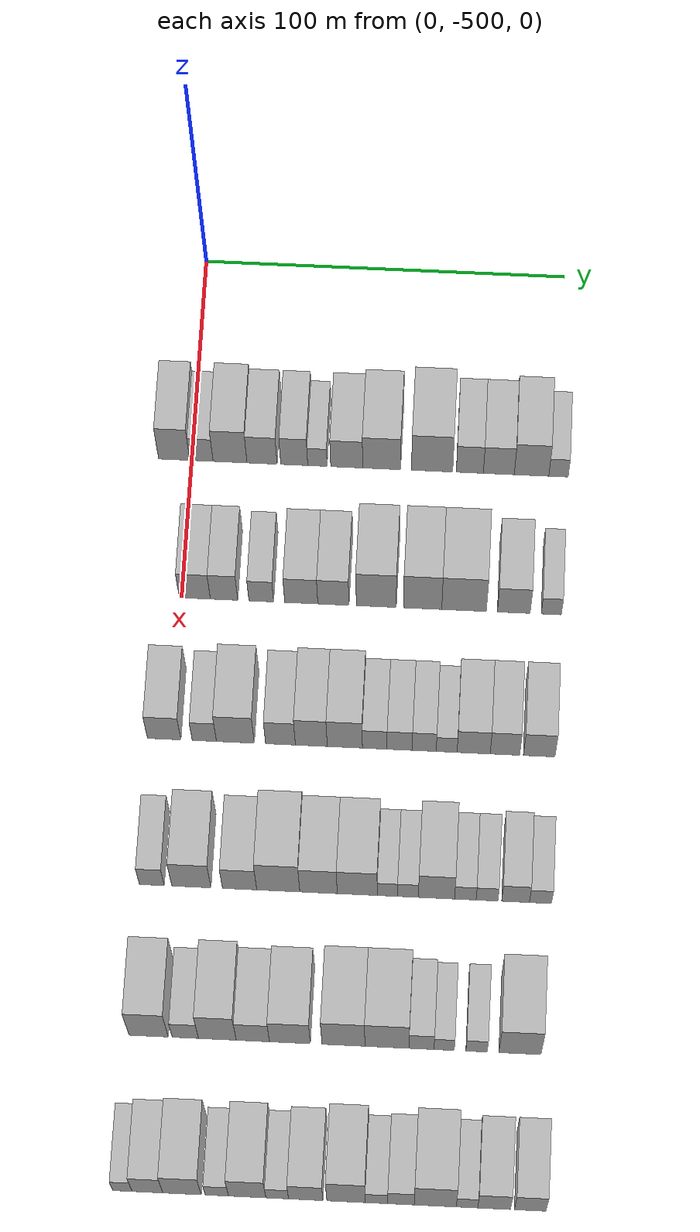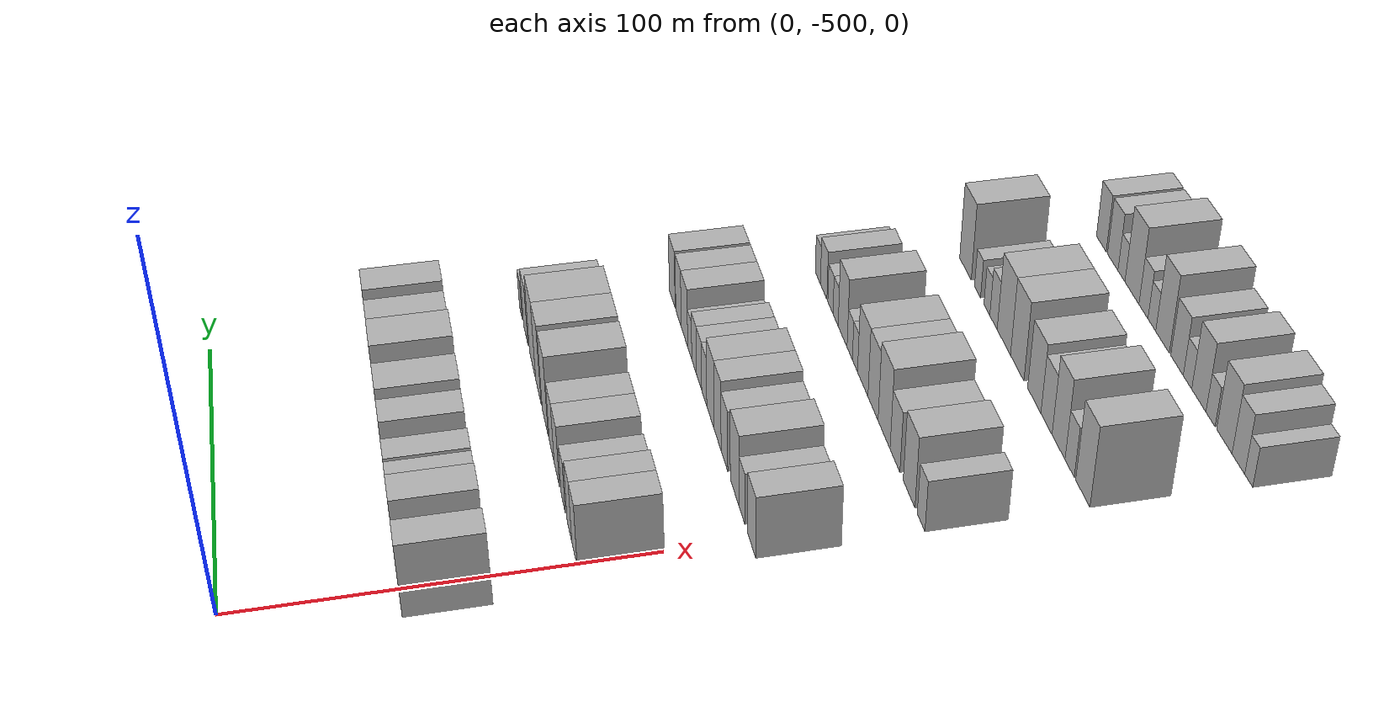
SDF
<sdf version="1.6">
 <world name="default">
  <model name="building_13">
   <static>1</static>
   <pose>50.0000 -504.8235 0 0.000000 0.000000 0.000000</pose>
   <link name="link">
    <pose>0 0 10.50 0 0 0</pose>
    <collision name="collision"><geometry><box><size>20.0000 8.5176 21.0000</size></box></geometry></collision>
    <visual name="visual">
     <cast_shadows>0</cast_shadows>
     <geometry><box><size>20.0000 8.5176 21.0000</size></box></geometry>
     <material>
      <script>
       <uri>model://HANNAS_wall/materials/scripts</uri>
       <uri>model://HANNAS_wall/materials/textures</uri>
       <name>vrc/HANNAS_wall</name>
      </script>
     </material>
    </visual>
   </link>
  </model>
  <model name="building_14">
   <static>1</static>
   <pose>50.0000 -497.3733 0 0.000000 0.000000 0.000000</pose>
   <link name="link">
    <pose>0 0 7.50 0 0 0</pose>
    <collision name="collision"><geometry><box><size>20.0000 6.3828 15.0000</size></box></geometry></collision>
    <visual name="visual">
     <cast_shadows>0</cast_shadows>
     <geometry><box><size>20.0000 6.3828 15.0000</size></box></geometry>
     <material>
      <script>
       <uri>model://HANNAS_wall/materials/scripts</uri>
       <uri>model://HANNAS_wall/materials/textures</uri>
       <name>vrc/HANNAS_wall</name>
      </script>
     </material>
    </visual>
   </link>
  </model>
  <model name="building_15">
   <static>1</static>
   <pose>50.0000 -489.5475 0 0.000000 0.000000 0.000000</pose>
   <link name="link">
    <pose>0 0 10.50 0 0 0</pose>
    <collision name="collision"><geometry><box><size>20.0000 9.2689 21.0000</size></box></geometry></collision>
    <visual name="visual">
     <cast_shadows>0</cast_shadows>
     <geometry><box><size>20.0000 9.2689 21.0000</size></box></geometry>
     <material>
      <script>
       <uri>model://HANNAS_wall/materials/scripts</uri>
       <uri>model://HANNAS_wall/materials/textures</uri>
       <name>vrc/HANNAS_wall</name>
      </script>
     </material>
    </visual>
   </link>
  </model>
  <model name="building_16">
   <static>1</static>
   <pose>50.0000 -480.7981 0 0.000000 0.000000 0.000000</pose>
   <link name="link">
    <pose>0 0 9.00 0 0 0</pose>
    <collision name="collision"><geometry><box><size>20.0000 8.2298 18.0000</size></box></geometry></collision>
    <visual name="visual">
     <cast_shadows>0</cast_shadows>
     <geometry><box><size>20.0000 8.2298 18.0000</size></box></geometry>
     <material>
      <script>
       <uri>model://HANNAS_wall/materials/scripts</uri>
       <uri>model://HANNAS_wall/materials/textures</uri>
       <name>vrc/HANNAS_wall</name>
      </script>
     </material>
    </visual>
   </link>
  </model>
  <model name="building_17">
   <static>1</static>
   <pose>50.0000 -471.9992 0 0.000000 0.000000 0.000000</pose>
   <link name="link">
    <pose>0 0 9.00 0 0 0</pose>
    <collision name="collision"><geometry><box><size>20.0000 7.3680 18.0000</size></box></geometry></collision>
    <visual name="visual">
     <cast_shadows>0</cast_shadows>
     <geometry><box><size>20.0000 7.3680 18.0000</size></box></geometry>
     <material>
      <script>
       <uri>model://HANNAS_wall/materials/scripts</uri>
       <uri>model://HANNAS_wall/materials/textures</uri>
       <name>vrc/HANNAS_wall</name>
      </script>
     </material>
    </visual>
   </link>
  </model>
  <model name="building_18">
   <static>1</static>
   <pose>50.0000 -465.6649 0 0.000000 0.000000 0.000000</pose>
   <link name="link">
    <pose>0 0 6.00 0 0 0</pose>
    <collision name="collision"><geometry><box><size>20.0000 5.3005 12.0000</size></box></geometry></collision>
    <visual name="visual">
     <cast_shadows>0</cast_shadows>
     <geometry><box><size>20.0000 5.3005 12.0000</size></box></geometry>
     <material>
      <script>
       <uri>model://HANNAS_wall/materials/scripts</uri>
       <uri>model://HANNAS_wall/materials/textures</uri>
       <name>vrc/HANNAS_wall</name>
      </script>
     </material>
    </visual>
   </link>
  </model>
  <model name="building_19">
   <static>1</static>
   <pose>50.0000 -457.6492 0 0.000000 0.000000 0.000000</pose>
   <link name="link">
    <pose>0 0 9.00 0 0 0</pose>
    <collision name="collision"><geometry><box><size>20.0000 8.7309 18.0000</size></box></geometry></collision>
    <visual name="visual">
     <cast_shadows>0</cast_shadows>
     <geometry><box><size>20.0000 8.7309 18.0000</size></box></geometry>
     <material>
      <script>
       <uri>model://HANNAS_wall/materials/scripts</uri>
       <uri>model://HANNAS_wall/materials/textures</uri>
       <name>vrc/HANNAS_wall</name>
      </script>
     </material>
    </visual>
   </link>
  </model>
  <model name="building_20">
   <static>1</static>
   <pose>50.0000 -448.1120 0 0.000000 0.000000 0.000000</pose>
   <link name="link">
    <pose>0 0 10.50 0 0 0</pose>
    <collision name="collision"><geometry><box><size>20.0000 10.3435 21.0000</size></box></geometry></collision>
    <visual name="visual">
     <cast_shadows>0</cast_shadows>
     <geometry><box><size>20.0000 10.3435 21.0000</size></box></geometry>
     <material>
      <script>
       <uri>model://HANNAS_wall/materials/scripts</uri>
       <uri>model://HANNAS_wall/materials/textures</uri>
       <name>vrc/HANNAS_wall</name>
      </script>
     </material>
    </visual>
   </link>
  </model>
  <model name="building_21">
   <static>1</static>
   <pose>50.0000 -434.3321 0 0.000000 0.000000 0.000000</pose>
   <link name="link">
    <pose>0 0 12.00 0 0 0</pose>
    <collision name="collision"><geometry><box><size>20.0000 11.2164 24.0000</size></box></geometry></collision>
    <visual name="visual">
     <cast_shadows>0</cast_shadows>
     <geometry><box><size>20.0000 11.2164 24.0000</size></box></geometry>
     <material>
      <script>
       <uri>model://HANNAS_wall/materials/scripts</uri>
       <uri>model://HANNAS_wall/materials/textures</uri>
       <name>vrc/HANNAS_wall</name>
      </script>
     </material>
    </visual>
   </link>
  </model>
  <model name="building_22">
   <static>1</static>
   <pose>50.0000 -424.0451 0 0.000000 0.000000 0.000000</pose>
   <link name="link">
    <pose>0 0 9.00 0 0 0</pose>
    <collision name="collision"><geometry><box><size>20.0000 7.3576 18.0000</size></box></geometry></collision>
    <visual name="visual">
     <cast_shadows>0</cast_shadows>
     <geometry><box><size>20.0000 7.3576 18.0000</size></box></geometry>
     <material>
      <script>
       <uri>model://HANNAS_wall/materials/scripts</uri>
       <uri>model://HANNAS_wall/materials/textures</uri>
       <name>vrc/HANNAS_wall</name>
      </script>
     </material>
    </visual>
   </link>
  </model>
  <model name="building_23">
   <static>1</static>
   <pose>50.0000 -416.1406 0 0.000000 0.000000 0.000000</pose>
   <link name="link">
    <pose>0 0 9.00 0 0 0</pose>
    <collision name="collision"><geometry><box><size>20.0000 8.4513 18.0000</size></box></geometry></collision>
    <visual name="visual">
     <cast_shadows>0</cast_shadows>
     <geometry><box><size>20.0000 8.4513 18.0000</size></box></geometry>
     <material>
      <script>
       <uri>model://HANNAS_wall/materials/scripts</uri>
       <uri>model://HANNAS_wall/materials/textures</uri>
       <name>vrc/HANNAS_wall</name>
      </script>
     </material>
    </visual>
   </link>
  </model>
  <model name="building_24">
   <static>1</static>
   <pose>50.0000 -407.2090 0 0.000000 0.000000 0.000000</pose>
   <link name="link">
    <pose>0 0 10.50 0 0 0</pose>
    <collision name="collision"><geometry><box><size>20.0000 9.4120 21.0000</size></box></geometry></collision>
    <visual name="visual">
     <cast_shadows>0</cast_shadows>
     <geometry><box><size>20.0000 9.4120 21.0000</size></box></geometry>
     <material>
      <script>
       <uri>model://HANNAS_wall/materials/scripts</uri>
       <uri>model://HANNAS_wall/materials/textures</uri>
       <name>vrc/HANNAS_wall</name>
      </script>
     </material>
    </visual>
   </link>
  </model>
  <model name="building_25">
   <static>1</static>
   <pose>50.0000 -399.8669 0 0.000000 0.000000 0.000000</pose>
   <link name="link">
    <pose>0 0 6.00 0 0 0</pose>
    <collision name="collision"><geometry><box><size>20.0000 5.2722 12.0000</size></box></geometry></collision>
    <visual name="visual">
     <cast_shadows>0</cast_shadows>
     <geometry><box><size>20.0000 5.2722 12.0000</size></box></geometry>
     <material>
      <script>
       <uri>model://HANNAS_wall/materials/scripts</uri>
       <uri>model://HANNAS_wall/materials/textures</uri>
       <name>vrc/HANNAS_wall</name>
      </script>
     </material>
    </visual>
   </link>
  </model>
  <model name="building_153">
   <static>1</static>
   <pose>90.0000 -496.4685 0 0.000000 0.000000 0.000000</pose>
   <link name="link">
    <pose>0 0 9.00 0 0 0</pose>
    <collision name="collision"><geometry><box><size>20.0000 8.3538 18.0000</size></box></geometry></collision>
    <visual name="visual">
     <cast_shadows>0</cast_shadows>
     <geometry><box><size>20.0000 8.3538 18.0000</size></box></geometry>
     <material>
      <script>
       <uri>model://HANNAS_wall/materials/scripts</uri>
       <uri>model://HANNAS_wall/materials/textures</uri>
       <name>vrc/HANNAS_wall</name>
      </script>
     </material>
    </visual>
   </link>
  </model>
  <model name="building_154">
   <static>1</static>
   <pose>90.0000 -488.5959 0 0.000000 0.000000 0.000000</pose>
   <link name="link">
    <pose>0 0 9.00 0 0 0</pose>
    <collision name="collision"><geometry><box><size>20.0000 7.3913 18.0000</size></box></geometry></collision>
    <visual name="visual">
     <cast_shadows>0</cast_shadows>
     <geometry><box><size>20.0000 7.3913 18.0000</size></box></geometry>
     <material>
      <script>
       <uri>model://HANNAS_wall/materials/scripts</uri>
       <uri>model://HANNAS_wall/materials/textures</uri>
       <name>vrc/HANNAS_wall</name>
      </script>
     </material>
    </visual>
   </link>
  </model>
  <model name="building_155">
   <static>1</static>
   <pose>90.0000 -478.5785 0 0.000000 0.000000 0.000000</pose>
   <link name="link">
    <pose>0 0 7.50 0 0 0</pose>
    <collision name="collision"><geometry><box><size>20.0000 6.6435 15.0000</size></box></geometry></collision>
    <visual name="visual">
     <cast_shadows>0</cast_shadows>
     <geometry><box><size>20.0000 6.6435 15.0000</size></box></geometry>
     <material>
      <script>
       <uri>model://HANNAS_wall/materials/scripts</uri>
       <uri>model://HANNAS_wall/materials/textures</uri>
       <name>vrc/HANNAS_wall</name>
      </script>
     </material>
    </visual>
   </link>
  </model>
  <model name="building_156">
   <static>1</static>
   <pose>90.0000 -467.8122 0 0.000000 0.000000 0.000000</pose>
   <link name="link">
    <pose>0 0 9.00 0 0 0</pose>
    <collision name="collision"><geometry><box><size>20.0000 8.8891 18.0000</size></box></geometry></collision>
    <visual name="visual">
     <cast_shadows>0</cast_shadows>
     <geometry><box><size>20.0000 8.8891 18.0000</size></box></geometry>
     <material>
      <script>
       <uri>model://HANNAS_wall/materials/scripts</uri>
       <uri>model://HANNAS_wall/materials/textures</uri>
       <name>vrc/HANNAS_wall</name>
      </script>
     </material>
    </visual>
   </link>
  </model>
  <model name="building_157">
   <static>1</static>
   <pose>90.0000 -459.1695 0 0.000000 0.000000 0.000000</pose>
   <link name="link">
    <pose>0 0 9.00 0 0 0</pose>
    <collision name="collision"><geometry><box><size>20.0000 8.3962 18.0000</size></box></geometry></collision>
    <visual name="visual">
     <cast_shadows>0</cast_shadows>
     <geometry><box><size>20.0000 8.3962 18.0000</size></box></geometry>
     <material>
      <script>
       <uri>model://HANNAS_wall/materials/scripts</uri>
       <uri>model://HANNAS_wall/materials/textures</uri>
       <name>vrc/HANNAS_wall</name>
      </script>
     </material>
    </visual>
   </link>
  </model>
  <model name="building_158">
   <static>1</static>
   <pose>90.0000 -447.6109 0 0.000000 0.000000 0.000000</pose>
   <link name="link">
    <pose>0 0 12.00 0 0 0</pose>
    <collision name="collision"><geometry><box><size>20.0000 10.7211 24.0000</size></box></geometry></collision>
    <visual name="visual">
     <cast_shadows>0</cast_shadows>
     <geometry><box><size>20.0000 10.7211 24.0000</size></box></geometry>
     <material>
      <script>
       <uri>model://HANNAS_wall/materials/scripts</uri>
       <uri>model://HANNAS_wall/materials/textures</uri>
       <name>vrc/HANNAS_wall</name>
      </script>
     </material>
    </visual>
   </link>
  </model>
  <model name="building_159">
   <static>1</static>
   <pose>90.0000 -435.1370 0 0.000000 0.000000 0.000000</pose>
   <link name="link">
    <pose>0 0 12.00 0 0 0</pose>
    <collision name="collision"><geometry><box><size>20.0000 10.2266 24.0000</size></box></geometry></collision>
    <visual name="visual">
     <cast_shadows>0</cast_shadows>
     <geometry><box><size>20.0000 10.2266 24.0000</size></box></geometry>
     <material>
      <script>
       <uri>model://HANNAS_wall/materials/scripts</uri>
       <uri>model://HANNAS_wall/materials/textures</uri>
       <name>vrc/HANNAS_wall</name>
      </script>
     </material>
    </visual>
   </link>
  </model>
  <model name="building_160">
   <static>1</static>
   <pose>90.0000 -424.0389 0 0.000000 0.000000 0.000000</pose>
   <link name="link">
    <pose>0 0 12.00 0 0 0</pose>
    <collision name="collision"><geometry><box><size>20.0000 11.9696 24.0000</size></box></geometry></collision>
    <visual name="visual">
     <cast_shadows>0</cast_shadows>
     <geometry><box><size>20.0000 11.9696 24.0000</size></box></geometry>
     <material>
      <script>
       <uri>model://HANNAS_wall/materials/scripts</uri>
       <uri>model://HANNAS_wall/materials/textures</uri>
       <name>vrc/HANNAS_wall</name>
      </script>
     </material>
    </visual>
   </link>
  </model>
  <model name="building_161">
   <static>1</static>
   <pose>90.0000 -410.6674 0 0.000000 0.000000 0.000000</pose>
   <link name="link">
    <pose>0 0 9.00 0 0 0</pose>
    <collision name="collision"><geometry><box><size>20.0000 8.7735 18.0000</size></box></geometry></collision>
    <visual name="visual">
     <cast_shadows>0</cast_shadows>
     <geometry><box><size>20.0000 8.7735 18.0000</size></box></geometry>
     <material>
      <script>
       <uri>model://HANNAS_wall/materials/scripts</uri>
       <uri>model://HANNAS_wall/materials/textures</uri>
       <name>vrc/HANNAS_wall</name>
      </script>
     </material>
    </visual>
   </link>
  </model>
  <model name="building_162">
   <static>1</static>
   <pose>90.0000 -400.5855 0 0.000000 0.000000 0.000000</pose>
   <link name="link">
    <pose>0 0 6.00 0 0 0</pose>
    <collision name="collision"><geometry><box><size>20.0000 5.3903 12.0000</size></box></geometry></collision>
    <visual name="visual">
     <cast_shadows>0</cast_shadows>
     <geometry><box><size>20.0000 5.3903 12.0000</size></box></geometry>
     <material>
      <script>
       <uri>model://HANNAS_wall/materials/scripts</uri>
       <uri>model://HANNAS_wall/materials/textures</uri>
       <name>vrc/HANNAS_wall</name>
      </script>
     </material>
    </visual>
   </link>
  </model>
  <model name="building_276">
   <static>1</static>
   <pose>130.0000 -501.9038 0 0.000000 0.000000 0.000000</pose>
   <link name="link">
    <pose>0 0 9.00 0 0 0</pose>
    <collision name="collision"><geometry><box><size>20.0000 8.8730 18.0000</size></box></geometry></collision>
    <visual name="visual">
     <cast_shadows>0</cast_shadows>
     <geometry><box><size>20.0000 8.8730 18.0000</size></box></geometry>
     <material>
      <script>
       <uri>model://HANNAS_wall/materials/scripts</uri>
       <uri>model://HANNAS_wall/materials/textures</uri>
       <name>vrc/HANNAS_wall</name>
      </script>
     </material>
    </visual>
   </link>
  </model>
  <model name="building_277">
   <static>1</static>
   <pose>130.0000 -491.2554 0 0.000000 0.000000 0.000000</pose>
   <link name="link">
    <pose>0 0 7.50 0 0 0</pose>
    <collision name="collision"><geometry><box><size>20.0000 6.4237 15.0000</size></box></geometry></collision>
    <visual name="visual">
     <cast_shadows>0</cast_shadows>
     <geometry><box><size>20.0000 6.4237 15.0000</size></box></geometry>
     <material>
      <script>
       <uri>model://HANNAS_wall/materials/scripts</uri>
       <uri>model://HANNAS_wall/materials/textures</uri>
       <name>vrc/HANNAS_wall</name>
      </script>
     </material>
    </visual>
   </link>
  </model>
  <model name="building_278">
   <static>1</static>
   <pose>130.0000 -483.0181 0 0.000000 0.000000 0.000000</pose>
   <link name="link">
    <pose>0 0 10.50 0 0 0</pose>
    <collision name="collision"><geometry><box><size>20.0000 10.0509 21.0000</size></box></geometry></collision>
    <visual name="visual">
     <cast_shadows>0</cast_shadows>
     <geometry><box><size>20.0000 10.0509 21.0000</size></box></geometry>
     <material>
      <script>
       <uri>model://HANNAS_wall/materials/scripts</uri>
       <uri>model://HANNAS_wall/materials/textures</uri>
       <name>vrc/HANNAS_wall</name>
      </script>
     </material>
    </visual>
   </link>
  </model>
  <model name="building_279">
   <static>1</static>
   <pose>130.0000 -471.0451 0 0.000000 0.000000 0.000000</pose>
   <link name="link">
    <pose>0 0 9.00 0 0 0</pose>
    <collision name="collision"><geometry><box><size>20.0000 7.8951 18.0000</size></box></geometry></collision>
    <visual name="visual">
     <cast_shadows>0</cast_shadows>
     <geometry><box><size>20.0000 7.8951 18.0000</size></box></geometry>
     <material>
      <script>
       <uri>model://HANNAS_wall/materials/scripts</uri>
       <uri>model://HANNAS_wall/materials/textures</uri>
       <name>vrc/HANNAS_wall</name>
      </script>
     </material>
    </visual>
   </link>
  </model>
  <model name="building_280">
   <static>1</static>
   <pose>130.0000 -462.8791 0 0.000000 0.000000 0.000000</pose>
   <link name="link">
    <pose>0 0 10.50 0 0 0</pose>
    <collision name="collision"><geometry><box><size>20.0000 8.4370 21.0000</size></box></geometry></collision>
    <visual name="visual">
     <cast_shadows>0</cast_shadows>
     <geometry><box><size>20.0000 8.4370 21.0000</size></box></geometry>
     <material>
      <script>
       <uri>model://HANNAS_wall/materials/scripts</uri>
       <uri>model://HANNAS_wall/materials/textures</uri>
       <name>vrc/HANNAS_wall</name>
      </script>
     </material>
    </visual>
   </link>
  </model>
  <model name="building_281">
   <static>1</static>
   <pose>130.0000 -454.0001 0 0.000000 0.000000 0.000000</pose>
   <link name="link">
    <pose>0 0 10.50 0 0 0</pose>
    <collision name="collision"><geometry><box><size>20.0000 9.3211 21.0000</size></box></geometry></collision>
    <visual name="visual">
     <cast_shadows>0</cast_shadows>
     <geometry><box><size>20.0000 9.3211 21.0000</size></box></geometry>
     <material>
      <script>
       <uri>model://HANNAS_wall/materials/scripts</uri>
       <uri>model://HANNAS_wall/materials/textures</uri>
       <name>vrc/HANNAS_wall</name>
      </script>
     </material>
    </visual>
   </link>
  </model>
  <model name="building_282">
   <static>1</static>
   <pose>130.0000 -446.0748 0 0.000000 0.000000 0.000000</pose>
   <link name="link">
    <pose>0 0 7.50 0 0 0</pose>
    <collision name="collision"><geometry><box><size>20.0000 6.5295 15.0000</size></box></geometry></collision>
    <visual name="visual">
     <cast_shadows>0</cast_shadows>
     <geometry><box><size>20.0000 6.5295 15.0000</size></box></geometry>
     <material>
      <script>
       <uri>model://HANNAS_wall/materials/scripts</uri>
       <uri>model://HANNAS_wall/materials/textures</uri>
       <name>vrc/HANNAS_wall</name>
      </script>
     </material>
    </visual>
   </link>
  </model>
  <model name="building_283">
   <static>1</static>
   <pose>130.0000 -439.4811 0 0.000000 0.000000 0.000000</pose>
   <link name="link">
    <pose>0 0 7.50 0 0 0</pose>
    <collision name="collision"><geometry><box><size>20.0000 6.6579 15.0000</size></box></geometry></collision>
    <visual name="visual">
     <cast_shadows>0</cast_shadows>
     <geometry><box><size>20.0000 6.6579 15.0000</size></box></geometry>
     <material>
      <script>
       <uri>model://HANNAS_wall/materials/scripts</uri>
       <uri>model://HANNAS_wall/materials/textures</uri>
       <name>vrc/HANNAS_wall</name>
      </script>
     </material>
    </visual>
   </link>
  </model>
  <model name="building_284">
   <static>1</static>
   <pose>130.0000 -432.9756 0 0.000000 0.000000 0.000000</pose>
   <link name="link">
    <pose>0 0 7.50 0 0 0</pose>
    <collision name="collision"><geometry><box><size>20.0000 6.3530 15.0000</size></box></geometry></collision>
    <visual name="visual">
     <cast_shadows>0</cast_shadows>
     <geometry><box><size>20.0000 6.3530 15.0000</size></box></geometry>
     <material>
      <script>
       <uri>model://HANNAS_wall/materials/scripts</uri>
       <uri>model://HANNAS_wall/materials/textures</uri>
       <name>vrc/HANNAS_wall</name>
      </script>
     </material>
    </visual>
   </link>
  </model>
  <model name="building_285">
   <static>1</static>
   <pose>130.0000 -427.0404 0 0.000000 0.000000 0.000000</pose>
   <link name="link">
    <pose>0 0 6.00 0 0 0</pose>
    <collision name="collision"><geometry><box><size>20.0000 5.5175 12.0000</size></box></geometry></collision>
    <visual name="visual">
     <cast_shadows>0</cast_shadows>
     <geometry><box><size>20.0000 5.5175 12.0000</size></box></geometry>
     <material>
      <script>
       <uri>model://HANNAS_wall/materials/scripts</uri>
       <uri>model://HANNAS_wall/materials/textures</uri>
       <name>vrc/HANNAS_wall</name>
      </script>
     </material>
    </visual>
   </link>
  </model>
  <model name="building_286">
   <static>1</static>
   <pose>130.0000 -419.9090 0 0.000000 0.000000 0.000000</pose>
   <link name="link">
    <pose>0 0 9.00 0 0 0</pose>
    <collision name="collision"><geometry><box><size>20.0000 8.7454 18.0000</size></box></geometry></collision>
    <visual name="visual">
     <cast_shadows>0</cast_shadows>
     <geometry><box><size>20.0000 8.7454 18.0000</size></box></geometry>
     <material>
      <script>
       <uri>model://HANNAS_wall/materials/scripts</uri>
       <uri>model://HANNAS_wall/materials/textures</uri>
       <name>vrc/HANNAS_wall</name>
      </script>
     </material>
    </visual>
   </link>
  </model>
  <model name="building_287">
   <static>1</static>
   <pose>130.0000 -411.6331 0 0.000000 0.000000 0.000000</pose>
   <link name="link">
    <pose>0 0 9.00 0 0 0</pose>
    <collision name="collision"><geometry><box><size>20.0000 7.8064 18.0000</size></box></geometry></collision>
    <visual name="visual">
     <cast_shadows>0</cast_shadows>
     <geometry><box><size>20.0000 7.8064 18.0000</size></box></geometry>
     <material>
      <script>
       <uri>model://HANNAS_wall/materials/scripts</uri>
       <uri>model://HANNAS_wall/materials/textures</uri>
       <name>vrc/HANNAS_wall</name>
      </script>
     </material>
    </visual>
   </link>
  </model>
  <model name="building_288">
   <static>1</static>
   <pose>130.0000 -402.5638 0 0.000000 0.000000 0.000000</pose>
   <link name="link">
    <pose>0 0 9.00 0 0 0</pose>
    <collision name="collision"><geometry><box><size>20.0000 8.3322 18.0000</size></box></geometry></collision>
    <visual name="visual">
     <cast_shadows>0</cast_shadows>
     <geometry><box><size>20.0000 8.3322 18.0000</size></box></geometry>
     <material>
      <script>
       <uri>model://HANNAS_wall/materials/scripts</uri>
       <uri>model://HANNAS_wall/materials/textures</uri>
       <name>vrc/HANNAS_wall</name>
      </script>
     </material>
    </visual>
   </link>
  </model>
  <model name="building_415">
   <static>1</static>
   <pose>170.0000 -502.3070 0 0.000000 0.000000 0.000000</pose>
   <link name="link">
    <pose>0 0 7.50 0 0 0</pose>
    <collision name="collision"><geometry><box><size>20.0000 6.4885 15.0000</size></box></geometry></collision>
    <visual name="visual">
     <cast_shadows>0</cast_shadows>
     <geometry><box><size>20.0000 6.4885 15.0000</size></box></geometry>
     <material>
      <script>
       <uri>model://HANNAS_wall/materials/scripts</uri>
       <uri>model://HANNAS_wall/materials/textures</uri>
       <name>vrc/HANNAS_wall</name>
      </script>
     </material>
    </visual>
   </link>
  </model>
  <model name="building_416">
   <static>1</static>
   <pose>170.0000 -491.9580 0 0.000000 0.000000 0.000000</pose>
   <link name="link">
    <pose>0 0 10.50 0 0 0</pose>
    <collision name="collision"><geometry><box><size>20.0000 10.2094 21.0000</size></box></geometry></collision>
    <visual name="visual">
     <cast_shadows>0</cast_shadows>
     <geometry><box><size>20.0000 10.2094 21.0000</size></box></geometry>
     <material>
      <script>
       <uri>model://HANNAS_wall/materials/scripts</uri>
       <uri>model://HANNAS_wall/materials/textures</uri>
       <name>vrc/HANNAS_wall</name>
      </script>
     </material>
    </visual>
   </link>
  </model>
  <model name="building_417">
   <static>1</static>
   <pose>170.0000 -479.3804 0 0.000000 0.000000 0.000000</pose>
   <link name="link">
    <pose>0 0 9.00 0 0 0</pose>
    <collision name="collision"><geometry><box><size>20.0000 8.9459 18.0000</size></box></geometry></collision>
    <visual name="visual">
     <cast_shadows>0</cast_shadows>
     <geometry><box><size>20.0000 8.9459 18.0000</size></box></geometry>
     <material>
      <script>
       <uri>model://HANNAS_wall/materials/scripts</uri>
       <uri>model://HANNAS_wall/materials/textures</uri>
       <name>vrc/HANNAS_wall</name>
      </script>
     </material>
    </visual>
   </link>
  </model>
  <model name="building_418">
   <static>1</static>
   <pose>170.0000 -469.2780 0 0.000000 0.000000 0.000000</pose>
   <link name="link">
    <pose>0 0 12.00 0 0 0</pose>
    <collision name="collision"><geometry><box><size>20.0000 11.2589 24.0000</size></box></geometry></collision>
    <visual name="visual">
     <cast_shadows>0</cast_shadows>
     <geometry><box><size>20.0000 11.2589 24.0000</size></box></geometry>
     <material>
      <script>
       <uri>model://HANNAS_wall/materials/scripts</uri>
       <uri>model://HANNAS_wall/materials/textures</uri>
       <name>vrc/HANNAS_wall</name>
      </script>
     </material>
    </visual>
   </link>
  </model>
  <model name="building_419">
   <static>1</static>
   <pose>170.0000 -458.7657 0 0.000000 0.000000 0.000000</pose>
   <link name="link">
    <pose>0 0 10.50 0 0 0</pose>
    <collision name="collision"><geometry><box><size>20.0000 9.7657 21.0000</size></box></geometry></collision>
    <visual name="visual">
     <cast_shadows>0</cast_shadows>
     <geometry><box><size>20.0000 9.7657 21.0000</size></box></geometry>
     <material>
      <script>
       <uri>model://HANNAS_wall/materials/scripts</uri>
       <uri>model://HANNAS_wall/materials/textures</uri>
       <name>vrc/HANNAS_wall</name>
      </script>
     </material>
    </visual>
   </link>
  </model>
  <model name="building_420">
   <static>1</static>
   <pose>170.0000 -448.6775 0 0.000000 0.000000 0.000000</pose>
   <link name="link">
    <pose>0 0 10.50 0 0 0</pose>
    <collision name="collision"><geometry><box><size>20.0000 10.4108 21.0000</size></box></geometry></collision>
    <visual name="visual">
     <cast_shadows>0</cast_shadows>
     <geometry><box><size>20.0000 10.4108 21.0000</size></box></geometry>
     <material>
      <script>
       <uri>model://HANNAS_wall/materials/scripts</uri>
       <uri>model://HANNAS_wall/materials/textures</uri>
       <name>vrc/HANNAS_wall</name>
      </script>
     </material>
    </visual>
   </link>
  </model>
  <model name="building_421">
   <static>1</static>
   <pose>170.0000 -440.8345 0 0.000000 0.000000 0.000000</pose>
   <link name="link">
    <pose>0 0 6.00 0 0 0</pose>
    <collision name="collision"><geometry><box><size>20.0000 5.2751 12.0000</size></box></geometry></collision>
    <visual name="visual">
     <cast_shadows>0</cast_shadows>
     <geometry><box><size>20.0000 5.2751 12.0000</size></box></geometry>
     <material>
      <script>
       <uri>model://HANNAS_wall/materials/scripts</uri>
       <uri>model://HANNAS_wall/materials/textures</uri>
       <name>vrc/HANNAS_wall</name>
      </script>
     </material>
    </visual>
   </link>
  </model>
  <model name="building_422">
   <static>1</static>
   <pose>170.0000 -435.4696 0 0.000000 0.000000 0.000000</pose>
   <link name="link">
    <pose>0 0 6.00 0 0 0</pose>
    <collision name="collision"><geometry><box><size>20.0000 5.4547 12.0000</size></box></geometry></collision>
    <visual name="visual">
     <cast_shadows>0</cast_shadows>
     <geometry><box><size>20.0000 5.4547 12.0000</size></box></geometry>
     <material>
      <script>
       <uri>model://HANNAS_wall/materials/scripts</uri>
       <uri>model://HANNAS_wall/materials/textures</uri>
       <name>vrc/HANNAS_wall</name>
      </script>
     </material>
    </visual>
   </link>
  </model>
  <model name="building_423">
   <static>1</static>
   <pose>170.0000 -428.0339 0 0.000000 0.000000 0.000000</pose>
   <link name="link">
    <pose>0 0 10.50 0 0 0</pose>
    <collision name="collision"><geometry><box><size>20.0000 9.4168 21.0000</size></box></geometry></collision>
    <visual name="visual">
     <cast_shadows>0</cast_shadows>
     <geometry><box><size>20.0000 9.4168 21.0000</size></box></geometry>
     <material>
      <script>
       <uri>model://HANNAS_wall/materials/scripts</uri>
       <uri>model://HANNAS_wall/materials/textures</uri>
       <name>vrc/HANNAS_wall</name>
      </script>
     </material>
    </visual>
   </link>
  </model>
  <model name="building_424">
   <static>1</static>
   <pose>170.0000 -420.5229 0 0.000000 0.000000 0.000000</pose>
   <link name="link">
    <pose>0 0 6.00 0 0 0</pose>
    <collision name="collision"><geometry><box><size>20.0000 5.6051 12.0000</size></box></geometry></collision>
    <visual name="visual">
     <cast_shadows>0</cast_shadows>
     <geometry><box><size>20.0000 5.6051 12.0000</size></box></geometry>
     <material>
      <script>
       <uri>model://HANNAS_wall/materials/scripts</uri>
       <uri>model://HANNAS_wall/materials/textures</uri>
       <name>vrc/HANNAS_wall</name>
      </script>
     </material>
    </visual>
   </link>
  </model>
  <model name="building_425">
   <static>1</static>
   <pose>170.0000 -414.8734 0 0.000000 0.000000 0.000000</pose>
   <link name="link">
    <pose>0 0 6.00 0 0 0</pose>
    <collision name="collision"><geometry><box><size>20.0000 5.6939 12.0000</size></box></geometry></collision>
    <visual name="visual">
     <cast_shadows>0</cast_shadows>
     <geometry><box><size>20.0000 5.6939 12.0000</size></box></geometry>
     <material>
      <script>
       <uri>model://HANNAS_wall/materials/scripts</uri>
       <uri>model://HANNAS_wall/materials/textures</uri>
       <name>vrc/HANNAS_wall</name>
      </script>
     </material>
    </visual>
   </link>
  </model>
  <model name="building_426">
   <static>1</static>
   <pose>170.0000 -407.4185 0 0.000000 0.000000 0.000000</pose>
   <link name="link">
    <pose>0 0 7.50 0 0 0</pose>
    <collision name="collision"><geometry><box><size>20.0000 7.2159 15.0000</size></box></geometry></collision>
    <visual name="visual">
     <cast_shadows>0</cast_shadows>
     <geometry><box><size>20.0000 7.2159 15.0000</size></box></geometry>
     <material>
      <script>
       <uri>model://HANNAS_wall/materials/scripts</uri>
       <uri>model://HANNAS_wall/materials/textures</uri>
       <name>vrc/HANNAS_wall</name>
      </script>
     </material>
    </visual>
   </link>
  </model>
  <model name="building_427">
   <static>1</static>
   <pose>170.0000 -400.9358 0 0.000000 0.000000 0.000000</pose>
   <link name="link">
    <pose>0 0 6.00 0 0 0</pose>
    <collision name="collision"><geometry><box><size>20.0000 5.7495 12.0000</size></box></geometry></collision>
    <visual name="visual">
     <cast_shadows>0</cast_shadows>
     <geometry><box><size>20.0000 5.7495 12.0000</size></box></geometry>
     <material>
      <script>
       <uri>model://HANNAS_wall/materials/scripts</uri>
       <uri>model://HANNAS_wall/materials/textures</uri>
       <name>vrc/HANNAS_wall</name>
      </script>
     </material>
    </visual>
   </link>
  </model>
  <model name="building_558">
   <static>1</static>
   <pose>210.0000 -500.2497 0 0.000000 0.000000 0.000000</pose>
   <link name="link">
    <pose>0 0 12.00 0 0 0</pose>
    <collision name="collision"><geometry><box><size>20.0000 10.1005 24.0000</size></box></geometry></collision>
    <visual name="visual">
     <cast_shadows>0</cast_shadows>
     <geometry><box><size>20.0000 10.1005 24.0000</size></box></geometry>
     <material>
      <script>
       <uri>model://HANNAS_wall/materials/scripts</uri>
       <uri>model://HANNAS_wall/materials/textures</uri>
       <name>vrc/HANNAS_wall</name>
      </script>
     </material>
    </visual>
   </link>
  </model>
  <model name="building_559">
   <static>1</static>
   <pose>210.0000 -490.8271 0 0.000000 0.000000 0.000000</pose>
   <link name="link">
    <pose>0 0 7.50 0 0 0</pose>
    <collision name="collision"><geometry><box><size>20.0000 6.7448 15.0000</size></box></geometry></collision>
    <visual name="visual">
     <cast_shadows>0</cast_shadows>
     <geometry><box><size>20.0000 6.7448 15.0000</size></box></geometry>
     <material>
      <script>
       <uri>model://HANNAS_wall/materials/scripts</uri>
       <uri>model://HANNAS_wall/materials/textures</uri>
       <name>vrc/HANNAS_wall</name>
      </script>
     </material>
    </visual>
   </link>
  </model>
  <model name="building_560">
   <static>1</static>
   <pose>210.0000 -482.5995 0 0.000000 0.000000 0.000000</pose>
   <link name="link">
    <pose>0 0 12.00 0 0 0</pose>
    <collision name="collision"><geometry><box><size>20.0000 9.7103 24.0000</size></box></geometry></collision>
    <visual name="visual">
     <cast_shadows>0</cast_shadows>
     <geometry><box><size>20.0000 9.7103 24.0000</size></box></geometry>
     <material>
      <script>
       <uri>model://HANNAS_wall/materials/scripts</uri>
       <uri>model://HANNAS_wall/materials/textures</uri>
       <name>vrc/HANNAS_wall</name>
      </script>
     </material>
    </visual>
   </link>
  </model>
  <model name="building_561">
   <static>1</static>
   <pose>210.0000 -473.4616 0 0.000000 0.000000 0.000000</pose>
   <link name="link">
    <pose>0 0 9.00 0 0 0</pose>
    <collision name="collision"><geometry><box><size>20.0000 8.5655 18.0000</size></box></geometry></collision>
    <visual name="visual">
     <cast_shadows>0</cast_shadows>
     <geometry><box><size>20.0000 8.5655 18.0000</size></box></geometry>
     <material>
      <script>
       <uri>model://HANNAS_wall/materials/scripts</uri>
       <uri>model://HANNAS_wall/materials/textures</uri>
       <name>vrc/HANNAS_wall</name>
      </script>
     </material>
    </visual>
   </link>
  </model>
  <model name="building_562">
   <static>1</static>
   <pose>210.0000 -463.9332 0 0.000000 0.000000 0.000000</pose>
   <link name="link">
    <pose>0 0 10.50 0 0 0</pose>
    <collision name="collision"><geometry><box><size>20.0000 10.4912 21.0000</size></box></geometry></collision>
    <visual name="visual">
     <cast_shadows>0</cast_shadows>
     <geometry><box><size>20.0000 10.4912 21.0000</size></box></geometry>
     <material>
      <script>
       <uri>model://HANNAS_wall/materials/scripts</uri>
       <uri>model://HANNAS_wall/materials/textures</uri>
       <name>vrc/HANNAS_wall</name>
      </script>
     </material>
    </visual>
   </link>
  </model>
  <model name="building_563">
   <static>1</static>
   <pose>210.0000 -450.1784 0 0.000000 0.000000 0.000000</pose>
   <link name="link">
    <pose>0 0 12.00 0 0 0</pose>
    <collision name="collision"><geometry><box><size>20.0000 11.0185 24.0000</size></box></geometry></collision>
    <visual name="visual">
     <cast_shadows>0</cast_shadows>
     <geometry><box><size>20.0000 11.0185 24.0000</size></box></geometry>
     <material>
      <script>
       <uri>model://HANNAS_wall/materials/scripts</uri>
       <uri>model://HANNAS_wall/materials/textures</uri>
       <name>vrc/HANNAS_wall</name>
      </script>
     </material>
    </visual>
   </link>
  </model>
  <model name="building_564">
   <static>1</static>
   <pose>210.0000 -439.0216 0 0.000000 0.000000 0.000000</pose>
   <link name="link">
    <pose>0 0 12.00 0 0 0</pose>
    <collision name="collision"><geometry><box><size>20.0000 11.2951 24.0000</size></box></geometry></collision>
    <visual name="visual">
     <cast_shadows>0</cast_shadows>
     <geometry><box><size>20.0000 11.2951 24.0000</size></box></geometry>
     <material>
      <script>
       <uri>model://HANNAS_wall/materials/scripts</uri>
       <uri>model://HANNAS_wall/materials/textures</uri>
       <name>vrc/HANNAS_wall</name>
      </script>
     </material>
    </visual>
   </link>
  </model>
  <model name="building_565">
   <static>1</static>
   <pose>210.0000 -430.1682 0 0.000000 0.000000 0.000000</pose>
   <link name="link">
    <pose>0 0 7.50 0 0 0</pose>
    <collision name="collision"><geometry><box><size>20.0000 6.4119 15.0000</size></box></geometry></collision>
    <visual name="visual">
     <cast_shadows>0</cast_shadows>
     <geometry><box><size>20.0000 6.4119 15.0000</size></box></geometry>
     <material>
      <script>
       <uri>model://HANNAS_wall/materials/scripts</uri>
       <uri>model://HANNAS_wall/materials/textures</uri>
       <name>vrc/HANNAS_wall</name>
      </script>
     </material>
    </visual>
   </link>
  </model>
  <model name="building_566">
   <static>1</static>
   <pose>210.0000 -424.3636 0 0.000000 0.000000 0.000000</pose>
   <link name="link">
    <pose>0 0 6.00 0 0 0</pose>
    <collision name="collision"><geometry><box><size>20.0000 5.1973 12.0000</size></box></geometry></collision>
    <visual name="visual">
     <cast_shadows>0</cast_shadows>
     <geometry><box><size>20.0000 5.1973 12.0000</size></box></geometry>
     <material>
      <script>
       <uri>model://HANNAS_wall/materials/scripts</uri>
       <uri>model://HANNAS_wall/materials/textures</uri>
       <name>vrc/HANNAS_wall</name>
      </script>
     </material>
    </visual>
   </link>
  </model>
  <model name="building_567">
   <static>1</static>
   <pose>210.0000 -416.0361 0 0.000000 0.000000 0.000000</pose>
   <link name="link">
    <pose>0 0 6.00 0 0 0</pose>
    <collision name="collision"><geometry><box><size>20.0000 5.4576 12.0000</size></box></geometry></collision>
    <visual name="visual">
     <cast_shadows>0</cast_shadows>
     <geometry><box><size>20.0000 5.4576 12.0000</size></box></geometry>
     <material>
      <script>
       <uri>model://HANNAS_wall/materials/scripts</uri>
       <uri>model://HANNAS_wall/materials/textures</uri>
       <name>vrc/HANNAS_wall</name>
      </script>
     </material>
    </visual>
   </link>
  </model>
  <model name="building_568">
   <static>1</static>
   <pose>210.0000 -404.9125 0 0.000000 0.000000 0.000000</pose>
   <link name="link">
    <pose>0 0 12.00 0 0 0</pose>
    <collision name="collision"><geometry><box><size>20.0000 10.7897 24.0000</size></box></geometry></collision>
    <visual name="visual">
     <cast_shadows>0</cast_shadows>
     <geometry><box><size>20.0000 10.7897 24.0000</size></box></geometry>
     <material>
      <script>
       <uri>model://HANNAS_wall/materials/scripts</uri>
       <uri>model://HANNAS_wall/materials/textures</uri>
       <name>vrc/HANNAS_wall</name>
      </script>
     </material>
    </visual>
   </link>
  </model>
  <model name="building_685">
   <static>1</static>
   <pose>250.0000 -503.9802 0 0.000000 0.000000 0.000000</pose>
   <link name="link">
    <pose>0 0 6.00 0 0 0</pose>
    <collision name="collision"><geometry><box><size>20.0000 4.8850 12.0000</size></box></geometry></collision>
    <visual name="visual">
     <cast_shadows>0</cast_shadows>
     <geometry><box><size>20.0000 4.8850 12.0000</size></box></geometry>
     <material>
      <script>
       <uri>model://HANNAS_wall/materials/scripts</uri>
       <uri>model://HANNAS_wall/materials/textures</uri>
       <name>vrc/HANNAS_wall</name>
      </script>
     </material>
    </visual>
   </link>
  </model>
  <model name="building_686">
   <static>1</static>
   <pose>250.0000 -497.6416 0 0.000000 0.000000 0.000000</pose>
   <link name="link">
    <pose>0 0 9.00 0 0 0</pose>
    <collision name="collision"><geometry><box><size>20.0000 7.7922 18.0000</size></box></geometry></collision>
    <visual name="visual">
     <cast_shadows>0</cast_shadows>
     <geometry><box><size>20.0000 7.7922 18.0000</size></box></geometry>
     <material>
      <script>
       <uri>model://HANNAS_wall/materials/scripts</uri>
       <uri>model://HANNAS_wall/materials/textures</uri>
       <name>vrc/HANNAS_wall</name>
      </script>
     </material>
    </visual>
   </link>
  </model>
  <model name="building_687">
   <static>1</static>
   <pose>250.0000 -488.8949 0 0.000000 0.000000 0.000000</pose>
   <link name="link">
    <pose>0 0 10.50 0 0 0</pose>
    <collision name="collision"><geometry><box><size>20.0000 9.7012 21.0000</size></box></geometry></collision>
    <visual name="visual">
     <cast_shadows>0</cast_shadows>
     <geometry><box><size>20.0000 9.7012 21.0000</size></box></geometry>
     <material>
      <script>
       <uri>model://HANNAS_wall/materials/scripts</uri>
       <uri>model://HANNAS_wall/materials/textures</uri>
       <name>vrc/HANNAS_wall</name>
      </script>
     </material>
    </visual>
   </link>
  </model>
  <model name="building_688">
   <static>1</static>
   <pose>250.0000 -480.0847 0 0.000000 0.000000 0.000000</pose>
   <link name="link">
    <pose>0 0 6.00 0 0 0</pose>
    <collision name="collision"><geometry><box><size>20.0000 5.9191 12.0000</size></box></geometry></collision>
    <visual name="visual">
     <cast_shadows>0</cast_shadows>
     <geometry><box><size>20.0000 5.9191 12.0000</size></box></geometry>
     <material>
      <script>
       <uri>model://HANNAS_wall/materials/scripts</uri>
       <uri>model://HANNAS_wall/materials/textures</uri>
       <name>vrc/HANNAS_wall</name>
      </script>
     </material>
    </visual>
   </link>
  </model>
  <model name="building_689">
   <static>1</static>
   <pose>250.0000 -472.4097 0 0.000000 0.000000 0.000000</pose>
   <link name="link">
    <pose>0 0 10.50 0 0 0</pose>
    <collision name="collision"><geometry><box><size>20.0000 9.4308 21.0000</size></box></geometry></collision>
    <visual name="visual">
     <cast_shadows>0</cast_shadows>
     <geometry><box><size>20.0000 9.4308 21.0000</size></box></geometry>
     <material>
      <script>
       <uri>model://HANNAS_wall/materials/scripts</uri>
       <uri>model://HANNAS_wall/materials/textures</uri>
       <name>vrc/HANNAS_wall</name>
      </script>
     </material>
    </visual>
   </link>
  </model>
  <model name="building_690">
   <static>1</static>
   <pose>250.0000 -464.8203 0 0.000000 0.000000 0.000000</pose>
   <link name="link">
    <pose>0 0 6.00 0 0 0</pose>
    <collision name="collision"><geometry><box><size>20.0000 5.7480 12.0000</size></box></geometry></collision>
    <visual name="visual">
     <cast_shadows>0</cast_shadows>
     <geometry><box><size>20.0000 5.7480 12.0000</size></box></geometry>
     <material>
      <script>
       <uri>model://HANNAS_wall/materials/scripts</uri>
       <uri>model://HANNAS_wall/materials/textures</uri>
       <name>vrc/HANNAS_wall</name>
      </script>
     </material>
    </visual>
   </link>
  </model>
  <model name="building_691">
   <static>1</static>
   <pose>250.0000 -457.6116 0 0.000000 0.000000 0.000000</pose>
   <link name="link">
    <pose>0 0 9.00 0 0 0</pose>
    <collision name="collision"><geometry><box><size>20.0000 8.6695 18.0000</size></box></geometry></collision>
    <visual name="visual">
     <cast_shadows>0</cast_shadows>
     <geometry><box><size>20.0000 8.6695 18.0000</size></box></geometry>
     <material>
      <script>
       <uri>model://HANNAS_wall/materials/scripts</uri>
       <uri>model://HANNAS_wall/materials/textures</uri>
       <name>vrc/HANNAS_wall</name>
      </script>
     </material>
    </visual>
   </link>
  </model>
  <model name="building_692">
   <static>1</static>
   <pose>250.0000 -447.4330 0 0.000000 0.000000 0.000000</pose>
   <link name="link">
    <pose>0 0 12.00 0 0 0</pose>
    <collision name="collision"><geometry><box><size>20.0000 9.6877 24.0000</size></box></geometry></collision>
    <visual name="visual">
     <cast_shadows>0</cast_shadows>
     <geometry><box><size>20.0000 9.6877 24.0000</size></box></geometry>
     <material>
      <script>
       <uri>model://HANNAS_wall/materials/scripts</uri>
       <uri>model://HANNAS_wall/materials/textures</uri>
       <name>vrc/HANNAS_wall</name>
      </script>
     </material>
    </visual>
   </link>
  </model>
  <model name="building_693">
   <static>1</static>
   <pose>250.0000 -439.7496 0 0.000000 0.000000 0.000000</pose>
   <link name="link">
    <pose>0 0 6.00 0 0 0</pose>
    <collision name="collision"><geometry><box><size>20.0000 5.6789 12.0000</size></box></geometry></collision>
    <visual name="visual">
     <cast_shadows>0</cast_shadows>
     <geometry><box><size>20.0000 5.6789 12.0000</size></box></geometry>
     <material>
      <script>
       <uri>model://HANNAS_wall/materials/scripts</uri>
       <uri>model://HANNAS_wall/materials/textures</uri>
       <name>vrc/HANNAS_wall</name>
      </script>
     </material>
    </visual>
   </link>
  </model>
  <model name="building_694">
   <static>1</static>
   <pose>250.0000 -433.5715 0 0.000000 0.000000 0.000000</pose>
   <link name="link">
    <pose>0 0 7.50 0 0 0</pose>
    <collision name="collision"><geometry><box><size>20.0000 6.6774 15.0000</size></box></geometry></collision>
    <visual name="visual">
     <cast_shadows>0</cast_shadows>
     <geometry><box><size>20.0000 6.6774 15.0000</size></box></geometry>
     <material>
      <script>
       <uri>model://HANNAS_wall/materials/scripts</uri>
       <uri>model://HANNAS_wall/materials/textures</uri>
       <name>vrc/HANNAS_wall</name>
      </script>
     </material>
    </visual>
   </link>
  </model>
  <model name="building_695">
   <static>1</static>
   <pose>250.0000 -424.9280 0 0.000000 0.000000 0.000000</pose>
   <link name="link">
    <pose>0 0 12.00 0 0 0</pose>
    <collision name="collision"><geometry><box><size>20.0000 10.6095 24.0000</size></box></geometry></collision>
    <visual name="visual">
     <cast_shadows>0</cast_shadows>
     <geometry><box><size>20.0000 10.6095 24.0000</size></box></geometry>
     <material>
      <script>
       <uri>model://HANNAS_wall/materials/scripts</uri>
       <uri>model://HANNAS_wall/materials/textures</uri>
       <name>vrc/HANNAS_wall</name>
      </script>
     </material>
    </visual>
   </link>
  </model>
  <model name="building_696">
   <static>1</static>
   <pose>250.0000 -416.9151 0 0.000000 0.000000 0.000000</pose>
   <link name="link">
    <pose>0 0 6.00 0 0 0</pose>
    <collision name="collision"><geometry><box><size>20.0000 5.4164 12.0000</size></box></geometry></collision>
    <visual name="visual">
     <cast_shadows>0</cast_shadows>
     <geometry><box><size>20.0000 5.4164 12.0000</size></box></geometry>
     <material>
      <script>
       <uri>model://HANNAS_wall/materials/scripts</uri>
       <uri>model://HANNAS_wall/materials/textures</uri>
       <name>vrc/HANNAS_wall</name>
      </script>
     </material>
    </visual>
   </link>
  </model>
  <model name="building_697">
   <static>1</static>
   <pose>250.0000 -410.0726 0 0.000000 0.000000 0.000000</pose>
   <link name="link">
    <pose>0 0 9.00 0 0 0</pose>
    <collision name="collision"><geometry><box><size>20.0000 8.2686 18.0000</size></box></geometry></collision>
    <visual name="visual">
     <cast_shadows>0</cast_shadows>
     <geometry><box><size>20.0000 8.2686 18.0000</size></box></geometry>
     <material>
      <script>
       <uri>model://HANNAS_wall/materials/scripts</uri>
       <uri>model://HANNAS_wall/materials/textures</uri>
       <name>vrc/HANNAS_wall</name>
      </script>
     </material>
    </visual>
   </link>
  </model>
  <model name="building_698">
   <static>1</static>
   <pose>250.0000 -400.9763 0 0.000000 0.000000 0.000000</pose>
   <link name="link">
    <pose>0 0 9.00 0 0 0</pose>
    <collision name="collision"><geometry><box><size>20.0000 7.9240 18.0000</size></box></geometry></collision>
    <visual name="visual">
     <cast_shadows>0</cast_shadows>
     <geometry><box><size>20.0000 7.9240 18.0000</size></box></geometry>
     <material>
      <script>
       <uri>model://HANNAS_wall/materials/scripts</uri>
       <uri>model://HANNAS_wall/materials/textures</uri>
       <name>vrc/HANNAS_wall</name>
      </script>
     </material>
    </visual>
   </link>
  </model>
 </world>
</sdf>
